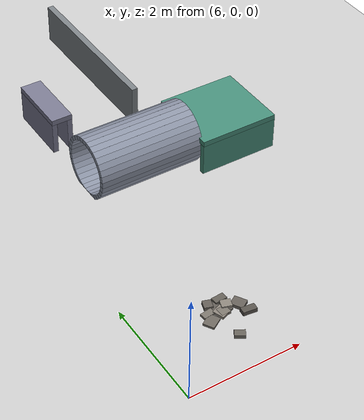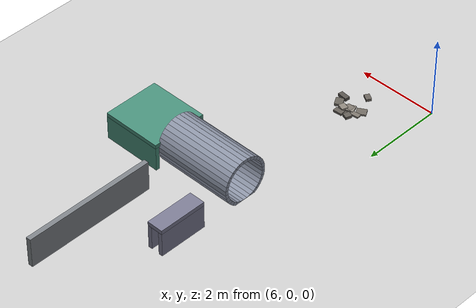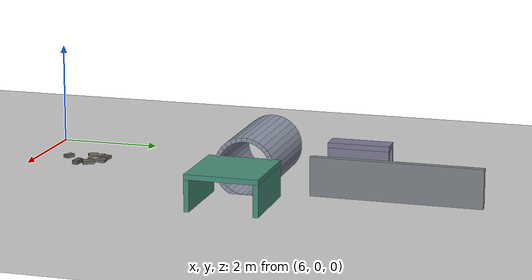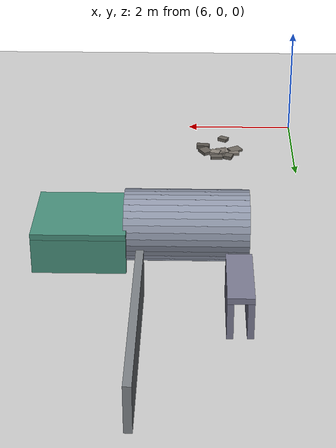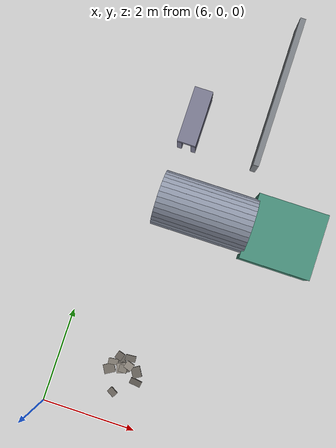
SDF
<sdf version="1.6">
 <world name="competition_arena">
  <include><uri>model://sun</uri></include>
  <include><uri>model://ground_plane</uri></include>
  <model name="rubble_patch_5">
   <static>true</static>
   <link name="structure">
    <collision name="rock_00_collision">
     <pose>7.4700806 1.400559 0.026507581 0 0 0.074344014</pose>
     <geometry><box><size>0.22339491 0.12731146 0.053015162</size></box></geometry>
     <surface><friction><ode><mu>0.9</mu><mu2>0.9</mu2></ode></friction></surface>
    </collision>
    <visual name="rock_00_visual">
     <pose>7.4700806 1.400559 0.026507581 0 0 0.074344014</pose>
     <geometry><box><size>0.22339491 0.12731146 0.053015162</size></box></geometry>
     <material>
      <ambient>0.39324581 0.37358352 0.34605631 1</ambient>
      <diffuse>0.39324581 0.37358352 0.34605631 1</diffuse>
     </material>
    </visual>
    <collision name="rock_01_collision">
     <pose>7.4901791 1.2415383 0.036608824 0 0 1.2556267</pose>
     <geometry><box><size>0.15628625 0.17697781 0.073217647</size></box></geometry>
     <surface><friction><ode><mu>0.9</mu><mu2>0.9</mu2></ode></friction></surface>
    </collision>
    <visual name="rock_01_visual">
     <pose>7.4901791 1.2415383 0.036608824 0 0 1.2556267</pose>
     <geometry><box><size>0.15628625 0.17697781 0.073217647</size></box></geometry>
     <material>
      <ambient>0.55205338 0.52445072 0.48580698 1</ambient>
      <diffuse>0.55205338 0.52445072 0.48580698 1</diffuse>
     </material>
    </visual>
    <collision name="rock_02_collision">
     <pose>7.7272118 0.96106279 0.038480929 0 0 3.0238907</pose>
     <geometry><box><size>0.24615208 0.12142814 0.076961857</size></box></geometry>
     <surface><friction><ode><mu>0.9</mu><mu2>0.9</mu2></ode></friction></surface>
    </collision>
    <visual name="rock_02_visual">
     <pose>7.7272118 0.96106279 0.038480929 0 0 3.0238907</pose>
     <geometry><box><size>0.24615208 0.12142814 0.076961857</size></box></geometry>
     <material>
      <ambient>0.34768202 0.33029792 0.30596018 1</ambient>
      <diffuse>0.34768202 0.33029792 0.30596018 1</diffuse>
     </material>
    </visual>
    <collision name="rock_03_collision">
     <pose>7.3856247 1.1474614 0.025864094 0 0 1.6066829</pose>
     <geometry><box><size>0.16077805 0.17274506 0.051728188</size></box></geometry>
     <surface><friction><ode><mu>0.9</mu><mu2>0.9</mu2></ode></friction></surface>
    </collision>
    <visual name="rock_03_visual">
     <pose>7.3856247 1.1474614 0.025864094 0 0 1.6066829</pose>
     <geometry><box><size>0.16077805 0.17274506 0.051728188</size></box></geometry>
     <material>
      <ambient>0.49485081 0.47010827 0.43546872 1</ambient>
      <diffuse>0.49485081 0.47010827 0.43546872 1</diffuse>
     </material>
    </visual>
    <collision name="rock_04_collision">
     <pose>7.1434096 1.2256555 0.021368063 0 0 1.6915968</pose>
     <geometry><box><size>0.12021987 0.21106902 0.042736125</size></box></geometry>
     <surface><friction><ode><mu>0.9</mu><mu2>0.9</mu2></ode></friction></surface>
    </collision>
    <visual name="rock_04_visual">
     <pose>7.1434096 1.2256555 0.021368063 0 0 1.6915968</pose>
     <geometry><box><size>0.12021987 0.21106902 0.042736125</size></box></geometry>
     <material>
      <ambient>0.49010847 0.46560304 0.43129545 1</ambient>
      <diffuse>0.49010847 0.46560304 0.43129545 1</diffuse>
     </material>
    </visual>
    <collision name="rock_05_collision">
     <pose>7.3260052 0.61951392 0.031765713 0 0 1.037354</pose>
     <geometry><box><size>0.1290966 0.17970852 0.063531425</size></box></geometry>
     <surface><friction><ode><mu>0.9</mu><mu2>0.9</mu2></ode></friction></surface>
    </collision>
    <visual name="rock_05_visual">
     <pose>7.3260052 0.61951392 0.031765713 0 0 1.037354</pose>
     <geometry><box><size>0.1290966 0.17970852 0.063531425</size></box></geometry>
     <material>
      <ambient>0.40741315 0.3870425 0.35852357 1</ambient>
      <diffuse>0.40741315 0.3870425 0.35852357 1</diffuse>
     </material>
    </visual>
    <collision name="rock_06_collision">
     <pose>7.2380189 1.3814252 0.032993857 0 0 1.2641781</pose>
     <geometry><box><size>0.16020701 0.14900715 0.065987713</size></box></geometry>
     <surface><friction><ode><mu>0.9</mu><mu2>0.9</mu2></ode></friction></surface>
    </collision>
    <visual name="rock_06_visual">
     <pose>7.2380189 1.3814252 0.032993857 0 0 1.2641781</pose>
     <geometry><box><size>0.16020701 0.14900715 0.065987713</size></box></geometry>
     <material>
      <ambient>0.39207734 0.37247348 0.34502806 1</ambient>
      <diffuse>0.39207734 0.37247348 0.34502806 1</diffuse>
     </material>
    </visual>
    <collision name="rock_07_collision">
     <pose>7.3545741 1.1539879 0.025511158 0 0 1.9336971</pose>
     <geometry><box><size>0.20805133 0.20833667 0.051022317</size></box></geometry>
     <surface><friction><ode><mu>0.9</mu><mu2>0.9</mu2></ode></friction></surface>
    </collision>
    <visual name="rock_07_visual">
     <pose>7.3545741 1.1539879 0.025511158 0 0 1.9336971</pose>
     <geometry><box><size>0.20805133 0.20833667 0.051022317</size></box></geometry>
     <material>
      <ambient>0.54568728 0.51840292 0.48020481 1</ambient>
      <diffuse>0.54568728 0.51840292 0.48020481 1</diffuse>
     </material>
    </visual>
    <collision name="rock_08_collision">
     <pose>7.2951768 1.3161793 0.015010148 0 0 2.0568184</pose>
     <geometry><box><size>0.17588546 0.16959817 0.030020297</size></box></geometry>
     <surface><friction><ode><mu>0.9</mu><mu2>0.9</mu2></ode></friction></surface>
    </collision>
    <visual name="rock_08_visual">
     <pose>7.2951768 1.3161793 0.015010148 0 0 2.0568184</pose>
     <geometry><box><size>0.17588546 0.16959817 0.030020297</size></box></geometry>
     <material>
      <ambient>0.38885929 0.36941633 0.34219618 1</ambient>
      <diffuse>0.38885929 0.36941633 0.34219618 1</diffuse>
     </material>
    </visual>
    <collision name="rock_09_collision">
     <pose>7.1079833 1.0652962 0.020342535 0 0 0.53310124</pose>
     <geometry><box><size>0.23715351 0.19552297 0.04068507</size></box></geometry>
     <surface><friction><ode><mu>0.9</mu><mu2>0.9</mu2></ode></friction></surface>
    </collision>
    <visual name="rock_09_visual">
     <pose>7.1079833 1.0652962 0.020342535 0 0 0.53310124</pose>
     <geometry><box><size>0.23715351 0.19552297 0.04068507</size></box></geometry>
     <material>
      <ambient>0.43356468 0.41188645 0.38153692 1</ambient>
      <diffuse>0.43356468 0.41188645 0.38153692 1</diffuse>
     </material>
    </visual>
    <collision name="rock_10_collision">
     <pose>7.6782974 1.1641024 0.030823521 0 0 2.1136499</pose>
     <geometry><box><size>0.22639505 0.19013658 0.061647043</size></box></geometry>
     <surface><friction><ode><mu>0.9</mu><mu2>0.9</mu2></ode></friction></surface>
    </collision>
    <visual name="rock_10_visual">
     <pose>7.6782974 1.1641024 0.030823521 0 0 2.1136499</pose>
     <geometry><box><size>0.22639505 0.19013658 0.061647043</size></box></geometry>
     <material>
      <ambient>0.40044518 0.38042292 0.35239176 1</ambient>
      <diffuse>0.40044518 0.38042292 0.35239176 1</diffuse>
     </material>
    </visual>
    <collision name="rock_11_collision">
     <pose>7.431861 1.1982642 0.015610635 0 0 0.22879663</pose>
     <geometry><box><size>0.18176772 0.20196852 0.031221269</size></box></geometry>
     <surface><friction><ode><mu>0.9</mu><mu2>0.9</mu2></ode></friction></surface>
    </collision>
    <visual name="rock_11_visual">
     <pose>7.431861 1.1982642 0.015610635 0 0 0.22879663</pose>
     <geometry><box><size>0.18176772 0.20196852 0.031221269</size></box></geometry>
     <material>
      <ambient>0.37876221 0.3598241 0.33331075 1</ambient>
      <diffuse>0.37876221 0.3598241 0.33331075 1</diffuse>
     </material>
    </visual>
   </link>
  </model>
  <model name="tunnel_1_reject">
   <static>true</static>
   <link name="structure">
    <collision name="side_-1_collision">
     <pose>7.05 6.6 0.3 0 0 0</pose>
     <geometry><box><size>0.1 1.2 0.6</size></box></geometry>
     <surface><friction><ode><mu>0.9</mu><mu2>0.9</mu2></ode></friction></surface>
    </collision>
    <visual name="side_-1_visual">
     <pose>7.05 6.6 0.3 0 0 0</pose>
     <geometry><box><size>0.1 1.2 0.6</size></box></geometry>
     <material><ambient>0.48 0.48 0.57 1</ambient><diffuse>0.48 0.48 0.57 1</diffuse></material>
    </visual>
    <collision name="side_1_collision">
     <pose>7.35 6.6 0.3 0 0 0</pose>
     <geometry><box><size>0.1 1.2 0.6</size></box></geometry>
     <surface><friction><ode><mu>0.9</mu><mu2>0.9</mu2></ode></friction></surface>
    </collision>
    <visual name="side_1_visual">
     <pose>7.35 6.6 0.3 0 0 0</pose>
     <geometry><box><size>0.1 1.2 0.6</size></box></geometry>
     <material><ambient>0.48 0.48 0.57 1</ambient><diffuse>0.48 0.48 0.57 1</diffuse></material>
    </visual>
    <collision name="roof_collision">
     <pose>7.2 6.6 0.65 0 0 0</pose>
     <geometry><box><size>0.4 1.2 0.1</size></box></geometry>
     <surface><friction><ode><mu>0.9</mu><mu2>0.9</mu2></ode></friction></surface>
    </collision>
    <visual name="roof_visual">
     <pose>7.2 6.6 0.65 0 0 0</pose>
     <geometry><box><size>0.4 1.2 0.1</size></box></geometry>
     <material><ambient>0.48 0.48 0.57 1</ambient><diffuse>0.48 0.48 0.57 1</diffuse></material>
    </visual>
   </link>
  </model>
  <model name="tunnel_3_culvert">
   <static>true</static>
   <link name="structure">
    <collision name="side_-1_collision">
     <pose>9.7 4.15 0.3 0 0 0</pose>
     <geometry><box><size>1.5 0.1 0.6</size></box></geometry>
     <surface><friction><ode><mu>0.9</mu><mu2>0.9</mu2></ode></friction></surface>
    </collision>
    <visual name="side_-1_visual">
     <pose>9.7 4.15 0.3 0 0 0</pose>
     <geometry><box><size>1.5 0.1 0.6</size></box></geometry>
     <material><ambient>0.28 0.56 0.48 1</ambient><diffuse>0.28 0.56 0.48 1</diffuse></material>
    </visual>
    <collision name="side_1_collision">
     <pose>9.7 5.45 0.3 0 0 0</pose>
     <geometry><box><size>1.5 0.1 0.6</size></box></geometry>
     <surface><friction><ode><mu>0.9</mu><mu2>0.9</mu2></ode></friction></surface>
    </collision>
    <visual name="side_1_visual">
     <pose>9.7 5.45 0.3 0 0 0</pose>
     <geometry><box><size>1.5 0.1 0.6</size></box></geometry>
     <material><ambient>0.28 0.56 0.48 1</ambient><diffuse>0.28 0.56 0.48 1</diffuse></material>
    </visual>
    <collision name="roof_collision">
     <pose>9.7 4.8 0.65 0 0 0</pose>
     <geometry><box><size>1.5 1.4 0.1</size></box></geometry>
     <surface><friction><ode><mu>0.9</mu><mu2>0.9</mu2></ode></friction></surface>
    </collision>
    <visual name="roof_visual">
     <pose>9.7 4.8 0.65 0 0 0</pose>
     <geometry><box><size>1.5 1.4 0.1</size></box></geometry>
     <material><ambient>0.28 0.56 0.48 1</ambient><diffuse>0.28 0.56 0.48 1</diffuse></material>
    </visual>
   </link>
  </model>
  <model name="tunnel_2_round_pipe">
   <static>true</static>
   <link name="structure">
    <collision name="shell_00_collision">
     <pose>8 5.34 0.5 -1.5707963 0 0</pose>
     <geometry><box><size>2 0.11625003 0.08</size></box></geometry>
     <surface><friction><ode><mu>0.9</mu><mu2>0.9</mu2></ode></friction></surface>
    </collision>
    <visual name="shell_00_visual">
     <pose>8 5.34 0.5 -1.5707963 0 0</pose>
     <geometry><box><size>2 0.11625003 0.08</size></box></geometry>
     <material><ambient>0.55 0.58 0.65 1</ambient><diffuse>0.55 0.58 0.65 1</diffuse></material>
    </visual>
    <collision name="shell_01_collision">
     <pose>8 5.3296241 0.60534877 -1.3744468 0 0</pose>
     <geometry><box><size>2 0.11625003 0.08</size></box></geometry>
     <surface><friction><ode><mu>0.9</mu><mu2>0.9</mu2></ode></friction></surface>
    </collision>
    <visual name="shell_01_visual">
     <pose>8 5.3296241 0.60534877 -1.3744468 0 0</pose>
     <geometry><box><size>2 0.11625003 0.08</size></box></geometry>
     <material><ambient>0.55 0.58 0.65 1</ambient><diffuse>0.55 0.58 0.65 1</diffuse></material>
    </visual>
    <collision name="shell_02_collision">
     <pose>8 5.2988949 0.70664905 -1.1780972 0 0</pose>
     <geometry><box><size>2 0.11625003 0.08</size></box></geometry>
     <surface><friction><ode><mu>0.9</mu><mu2>0.9</mu2></ode></friction></surface>
    </collision>
    <visual name="shell_02_visual">
     <pose>8 5.2988949 0.70664905 -1.1780972 0 0</pose>
     <geometry><box><size>2 0.11625003 0.08</size></box></geometry>
     <material><ambient>0.55 0.58 0.65 1</ambient><diffuse>0.55 0.58 0.65 1</diffuse></material>
    </visual>
    <collision name="shell_03_collision">
     <pose>8 5.2489936 0.80000793 -0.9817477 0 0</pose>
     <geometry><box><size>2 0.11625003 0.08</size></box></geometry>
     <surface><friction><ode><mu>0.9</mu><mu2>0.9</mu2></ode></friction></surface>
    </collision>
    <visual name="shell_03_visual">
     <pose>8 5.2489936 0.80000793 -0.9817477 0 0</pose>
     <geometry><box><size>2 0.11625003 0.08</size></box></geometry>
     <material><ambient>0.55 0.58 0.65 1</ambient><diffuse>0.55 0.58 0.65 1</diffuse></material>
    </visual>
    <collision name="shell_04_collision">
     <pose>8 5.1818377 0.88183766 -0.78539816 0 0</pose>
     <geometry><box><size>2 0.11625003 0.08</size></box></geometry>
     <surface><friction><ode><mu>0.9</mu><mu2>0.9</mu2></ode></friction></surface>
    </collision>
    <visual name="shell_04_visual">
     <pose>8 5.1818377 0.88183766 -0.78539816 0 0</pose>
     <geometry><box><size>2 0.11625003 0.08</size></box></geometry>
     <material><ambient>0.55 0.58 0.65 1</ambient><diffuse>0.55 0.58 0.65 1</diffuse></material>
    </visual>
    <collision name="shell_05_collision">
     <pose>8 5.1000079 0.94899359 -0.58904862 0 0</pose>
     <geometry><box><size>2 0.11625003 0.08</size></box></geometry>
     <surface><friction><ode><mu>0.9</mu><mu2>0.9</mu2></ode></friction></surface>
    </collision>
    <visual name="shell_05_visual">
     <pose>8 5.1000079 0.94899359 -0.58904862 0 0</pose>
     <geometry><box><size>2 0.11625003 0.08</size></box></geometry>
     <material><ambient>0.55 0.58 0.65 1</ambient><diffuse>0.55 0.58 0.65 1</diffuse></material>
    </visual>
    <collision name="shell_06_collision">
     <pose>8 5.0066491 0.99889495 -0.39269908 0 0</pose>
     <geometry><box><size>2 0.11625003 0.08</size></box></geometry>
     <surface><friction><ode><mu>0.9</mu><mu2>0.9</mu2></ode></friction></surface>
    </collision>
    <visual name="shell_06_visual">
     <pose>8 5.0066491 0.99889495 -0.39269908 0 0</pose>
     <geometry><box><size>2 0.11625003 0.08</size></box></geometry>
     <material><ambient>0.55 0.58 0.65 1</ambient><diffuse>0.55 0.58 0.65 1</diffuse></material>
    </visual>
    <collision name="shell_07_collision">
     <pose>8 4.9053488 1.0296241 -0.19634954 0 0</pose>
     <geometry><box><size>2 0.11625003 0.08</size></box></geometry>
     <surface><friction><ode><mu>0.9</mu><mu2>0.9</mu2></ode></friction></surface>
    </collision>
    <visual name="shell_07_visual">
     <pose>8 4.9053488 1.0296241 -0.19634954 0 0</pose>
     <geometry><box><size>2 0.11625003 0.08</size></box></geometry>
     <material><ambient>0.55 0.58 0.65 1</ambient><diffuse>0.55 0.58 0.65 1</diffuse></material>
    </visual>
    <collision name="shell_08_collision">
     <pose>8 4.8 1.04 0 0 0</pose>
     <geometry><box><size>2 0.11625003 0.08</size></box></geometry>
     <surface><friction><ode><mu>0.9</mu><mu2>0.9</mu2></ode></friction></surface>
    </collision>
    <visual name="shell_08_visual">
     <pose>8 4.8 1.04 0 0 0</pose>
     <geometry><box><size>2 0.11625003 0.08</size></box></geometry>
     <material><ambient>0.55 0.58 0.65 1</ambient><diffuse>0.55 0.58 0.65 1</diffuse></material>
    </visual>
    <collision name="shell_09_collision">
     <pose>8 4.6946512 1.0296241 0.19634954 0 0</pose>
     <geometry><box><size>2 0.11625003 0.08</size></box></geometry>
     <surface><friction><ode><mu>0.9</mu><mu2>0.9</mu2></ode></friction></surface>
    </collision>
    <visual name="shell_09_visual">
     <pose>8 4.6946512 1.0296241 0.19634954 0 0</pose>
     <geometry><box><size>2 0.11625003 0.08</size></box></geometry>
     <material><ambient>0.55 0.58 0.65 1</ambient><diffuse>0.55 0.58 0.65 1</diffuse></material>
    </visual>
    <collision name="shell_10_collision">
     <pose>8 4.5933509 0.99889495 0.39269908 0 0</pose>
     <geometry><box><size>2 0.11625003 0.08</size></box></geometry>
     <surface><friction><ode><mu>0.9</mu><mu2>0.9</mu2></ode></friction></surface>
    </collision>
    <visual name="shell_10_visual">
     <pose>8 4.5933509 0.99889495 0.39269908 0 0</pose>
     <geometry><box><size>2 0.11625003 0.08</size></box></geometry>
     <material><ambient>0.55 0.58 0.65 1</ambient><diffuse>0.55 0.58 0.65 1</diffuse></material>
    </visual>
    <collision name="shell_11_collision">
     <pose>8 4.4999921 0.94899359 0.58904862 0 0</pose>
     <geometry><box><size>2 0.11625003 0.08</size></box></geometry>
     <surface><friction><ode><mu>0.9</mu><mu2>0.9</mu2></ode></friction></surface>
    </collision>
    <visual name="shell_11_visual">
     <pose>8 4.4999921 0.94899359 0.58904862 0 0</pose>
     <geometry><box><size>2 0.11625003 0.08</size></box></geometry>
     <material><ambient>0.55 0.58 0.65 1</ambient><diffuse>0.55 0.58 0.65 1</diffuse></material>
    </visual>
    <collision name="shell_12_collision">
     <pose>8 4.4181623 0.88183766 0.78539816 0 0</pose>
     <geometry><box><size>2 0.11625003 0.08</size></box></geometry>
     <surface><friction><ode><mu>0.9</mu><mu2>0.9</mu2></ode></friction></surface>
    </collision>
    <visual name="shell_12_visual">
     <pose>8 4.4181623 0.88183766 0.78539816 0 0</pose>
     <geometry><box><size>2 0.11625003 0.08</size></box></geometry>
     <material><ambient>0.55 0.58 0.65 1</ambient><diffuse>0.55 0.58 0.65 1</diffuse></material>
    </visual>
    <collision name="shell_13_collision">
     <pose>8 4.3510064 0.80000793 0.9817477 0 0</pose>
     <geometry><box><size>2 0.11625003 0.08</size></box></geometry>
     <surface><friction><ode><mu>0.9</mu><mu2>0.9</mu2></ode></friction></surface>
    </collision>
    <visual name="shell_13_visual">
     <pose>8 4.3510064 0.80000793 0.9817477 0 0</pose>
     <geometry><box><size>2 0.11625003 0.08</size></box></geometry>
     <material><ambient>0.55 0.58 0.65 1</ambient><diffuse>0.55 0.58 0.65 1</diffuse></material>
    </visual>
    <collision name="shell_14_collision">
     <pose>8 4.3011051 0.70664905 1.1780972 0 0</pose>
     <geometry><box><size>2 0.11625003 0.08</size></box></geometry>
     <surface><friction><ode><mu>0.9</mu><mu2>0.9</mu2></ode></friction></surface>
    </collision>
    <visual name="shell_14_visual">
     <pose>8 4.3011051 0.70664905 1.1780972 0 0</pose>
     <geometry><box><size>2 0.11625003 0.08</size></box></geometry>
     <material><ambient>0.55 0.58 0.65 1</ambient><diffuse>0.55 0.58 0.65 1</diffuse></material>
    </visual>
    <collision name="shell_15_collision">
     <pose>8 4.2703759 0.60534877 1.3744468 0 0</pose>
     <geometry><box><size>2 0.11625003 0.08</size></box></geometry>
     <surface><friction><ode><mu>0.9</mu><mu2>0.9</mu2></ode></friction></surface>
    </collision>
    <visual name="shell_15_visual">
     <pose>8 4.2703759 0.60534877 1.3744468 0 0</pose>
     <geometry><box><size>2 0.11625003 0.08</size></box></geometry>
     <material><ambient>0.55 0.58 0.65 1</ambient><diffuse>0.55 0.58 0.65 1</diffuse></material>
    </visual>
    <collision name="shell_16_collision">
     <pose>8 4.26 0.5 1.5707963 0 0</pose>
     <geometry><box><size>2 0.11625003 0.08</size></box></geometry>
     <surface><friction><ode><mu>0.9</mu><mu2>0.9</mu2></ode></friction></surface>
    </collision>
    <visual name="shell_16_visual">
     <pose>8 4.26 0.5 1.5707963 0 0</pose>
     <geometry><box><size>2 0.11625003 0.08</size></box></geometry>
     <material><ambient>0.55 0.58 0.65 1</ambient><diffuse>0.55 0.58 0.65 1</diffuse></material>
    </visual>
    <collision name="shell_17_collision">
     <pose>8 4.2703759 0.39465123 1.7671459 0 0</pose>
     <geometry><box><size>2 0.11625003 0.08</size></box></geometry>
     <surface><friction><ode><mu>0.9</mu><mu2>0.9</mu2></ode></friction></surface>
    </collision>
    <visual name="shell_17_visual">
     <pose>8 4.2703759 0.39465123 1.7671459 0 0</pose>
     <geometry><box><size>2 0.11625003 0.08</size></box></geometry>
     <material><ambient>0.55 0.58 0.65 1</ambient><diffuse>0.55 0.58 0.65 1</diffuse></material>
    </visual>
    <collision name="shell_18_collision">
     <pose>8 4.3011051 0.29335095 1.9634954 0 0</pose>
     <geometry><box><size>2 0.11625003 0.08</size></box></geometry>
     <surface><friction><ode><mu>0.9</mu><mu2>0.9</mu2></ode></friction></surface>
    </collision>
    <visual name="shell_18_visual">
     <pose>8 4.3011051 0.29335095 1.9634954 0 0</pose>
     <geometry><box><size>2 0.11625003 0.08</size></box></geometry>
     <material><ambient>0.55 0.58 0.65 1</ambient><diffuse>0.55 0.58 0.65 1</diffuse></material>
    </visual>
    <collision name="shell_19_collision">
     <pose>8 4.3510064 0.19999207 2.1598449 0 0</pose>
     <geometry><box><size>2 0.11625003 0.08</size></box></geometry>
     <surface><friction><ode><mu>0.9</mu><mu2>0.9</mu2></ode></friction></surface>
    </collision>
    <visual name="shell_19_visual">
     <pose>8 4.3510064 0.19999207 2.1598449 0 0</pose>
     <geometry><box><size>2 0.11625003 0.08</size></box></geometry>
     <material><ambient>0.55 0.58 0.65 1</ambient><diffuse>0.55 0.58 0.65 1</diffuse></material>
    </visual>
    <collision name="shell_20_collision">
     <pose>8 4.4181623 0.11816234 2.3561945 0 0</pose>
     <geometry><box><size>2 0.11625003 0.08</size></box></geometry>
     <surface><friction><ode><mu>0.9</mu><mu2>0.9</mu2></ode></friction></surface>
    </collision>
    <visual name="shell_20_visual">
     <pose>8 4.4181623 0.11816234 2.3561945 0 0</pose>
     <geometry><box><size>2 0.11625003 0.08</size></box></geometry>
     <material><ambient>0.55 0.58 0.65 1</ambient><diffuse>0.55 0.58 0.65 1</diffuse></material>
    </visual>
    <collision name="shell_21_collision">
     <pose>8 4.4999921 0.051006409 2.552544 0 0</pose>
     <geometry><box><size>2 0.11625003 0.08</size></box></geometry>
     <surface><friction><ode><mu>0.9</mu><mu2>0.9</mu2></ode></friction></surface>
    </collision>
    <visual name="shell_21_visual">
     <pose>8 4.4999921 0.051006409 2.552544 0 0</pose>
     <geometry><box><size>2 0.11625003 0.08</size></box></geometry>
     <material><ambient>0.55 0.58 0.65 1</ambient><diffuse>0.55 0.58 0.65 1</diffuse></material>
    </visual>
    <collision name="shell_22_collision">
     <pose>8 4.5933509 0.0011050524 2.7488936 0 0</pose>
     <geometry><box><size>2 0.11625003 0.08</size></box></geometry>
     <surface><friction><ode><mu>0.9</mu><mu2>0.9</mu2></ode></friction></surface>
    </collision>
    <visual name="shell_22_visual">
     <pose>8 4.5933509 0.0011050524 2.7488936 0 0</pose>
     <geometry><box><size>2 0.11625003 0.08</size></box></geometry>
     <material><ambient>0.55 0.58 0.65 1</ambient><diffuse>0.55 0.58 0.65 1</diffuse></material>
    </visual>
    <collision name="shell_23_collision">
     <pose>8 4.6946512 -0.029624051 2.9452431 0 0</pose>
     <geometry><box><size>2 0.11625003 0.08</size></box></geometry>
     <surface><friction><ode><mu>0.9</mu><mu2>0.9</mu2></ode></friction></surface>
    </collision>
    <visual name="shell_23_visual">
     <pose>8 4.6946512 -0.029624051 2.9452431 0 0</pose>
     <geometry><box><size>2 0.11625003 0.08</size></box></geometry>
     <material><ambient>0.55 0.58 0.65 1</ambient><diffuse>0.55 0.58 0.65 1</diffuse></material>
    </visual>
    <collision name="shell_24_collision">
     <pose>8 4.8 -0.04 3.1415927 0 0</pose>
     <geometry><box><size>2 0.11625003 0.08</size></box></geometry>
     <surface><friction><ode><mu>0.9</mu><mu2>0.9</mu2></ode></friction></surface>
    </collision>
    <visual name="shell_24_visual">
     <pose>8 4.8 -0.04 3.1415927 0 0</pose>
     <geometry><box><size>2 0.11625003 0.08</size></box></geometry>
     <material><ambient>0.55 0.58 0.65 1</ambient><diffuse>0.55 0.58 0.65 1</diffuse></material>
    </visual>
    <collision name="shell_25_collision">
     <pose>8 4.9053488 -0.029624051 3.3379422 0 0</pose>
     <geometry><box><size>2 0.11625003 0.08</size></box></geometry>
     <surface><friction><ode><mu>0.9</mu><mu2>0.9</mu2></ode></friction></surface>
    </collision>
    <visual name="shell_25_visual">
     <pose>8 4.9053488 -0.029624051 3.3379422 0 0</pose>
     <geometry><box><size>2 0.11625003 0.08</size></box></geometry>
     <material><ambient>0.55 0.58 0.65 1</ambient><diffuse>0.55 0.58 0.65 1</diffuse></material>
    </visual>
    <collision name="shell_26_collision">
     <pose>8 5.0066491 0.0011050524 3.5342917 0 0</pose>
     <geometry><box><size>2 0.11625003 0.08</size></box></geometry>
     <surface><friction><ode><mu>0.9</mu><mu2>0.9</mu2></ode></friction></surface>
    </collision>
    <visual name="shell_26_visual">
     <pose>8 5.0066491 0.0011050524 3.5342917 0 0</pose>
     <geometry><box><size>2 0.11625003 0.08</size></box></geometry>
     <material><ambient>0.55 0.58 0.65 1</ambient><diffuse>0.55 0.58 0.65 1</diffuse></material>
    </visual>
    <collision name="shell_27_collision">
     <pose>8 5.1000079 0.051006409 3.7306413 0 0</pose>
     <geometry><box><size>2 0.11625003 0.08</size></box></geometry>
     <surface><friction><ode><mu>0.9</mu><mu2>0.9</mu2></ode></friction></surface>
    </collision>
    <visual name="shell_27_visual">
     <pose>8 5.1000079 0.051006409 3.7306413 0 0</pose>
     <geometry><box><size>2 0.11625003 0.08</size></box></geometry>
     <material><ambient>0.55 0.58 0.65 1</ambient><diffuse>0.55 0.58 0.65 1</diffuse></material>
    </visual>
    <collision name="shell_28_collision">
     <pose>8 5.1818377 0.11816234 3.9269908 0 0</pose>
     <geometry><box><size>2 0.11625003 0.08</size></box></geometry>
     <surface><friction><ode><mu>0.9</mu><mu2>0.9</mu2></ode></friction></surface>
    </collision>
    <visual name="shell_28_visual">
     <pose>8 5.1818377 0.11816234 3.9269908 0 0</pose>
     <geometry><box><size>2 0.11625003 0.08</size></box></geometry>
     <material><ambient>0.55 0.58 0.65 1</ambient><diffuse>0.55 0.58 0.65 1</diffuse></material>
    </visual>
    <collision name="shell_29_collision">
     <pose>8 5.2489936 0.19999207 4.1233404 0 0</pose>
     <geometry><box><size>2 0.11625003 0.08</size></box></geometry>
     <surface><friction><ode><mu>0.9</mu><mu2>0.9</mu2></ode></friction></surface>
    </collision>
    <visual name="shell_29_visual">
     <pose>8 5.2489936 0.19999207 4.1233404 0 0</pose>
     <geometry><box><size>2 0.11625003 0.08</size></box></geometry>
     <material><ambient>0.55 0.58 0.65 1</ambient><diffuse>0.55 0.58 0.65 1</diffuse></material>
    </visual>
    <collision name="shell_30_collision">
     <pose>8 5.2988949 0.29335095 4.3196899 0 0</pose>
     <geometry><box><size>2 0.11625003 0.08</size></box></geometry>
     <surface><friction><ode><mu>0.9</mu><mu2>0.9</mu2></ode></friction></surface>
    </collision>
    <visual name="shell_30_visual">
     <pose>8 5.2988949 0.29335095 4.3196899 0 0</pose>
     <geometry><box><size>2 0.11625003 0.08</size></box></geometry>
     <material><ambient>0.55 0.58 0.65 1</ambient><diffuse>0.55 0.58 0.65 1</diffuse></material>
    </visual>
    <collision name="shell_31_collision">
     <pose>8 5.3296241 0.39465123 4.5160394 0 0</pose>
     <geometry><box><size>2 0.11625003 0.08</size></box></geometry>
     <surface><friction><ode><mu>0.9</mu><mu2>0.9</mu2></ode></friction></surface>
    </collision>
    <visual name="shell_31_visual">
     <pose>8 5.3296241 0.39465123 4.5160394 0 0</pose>
     <geometry><box><size>2 0.11625003 0.08</size></box></geometry>
     <material><ambient>0.55 0.58 0.65 1</ambient><diffuse>0.55 0.58 0.65 1</diffuse></material>
    </visual>
   </link>
  </model>
  <model name="finish_lane_partition">
   <static>true</static>
   <link name="structure">
    <collision name="partition_collision">
     <pose>8.7 7.625 0.375 0 0 1.5707963</pose>
     <geometry><box><size>3.25 0.12 0.75</size></box></geometry>
     <surface><friction><ode><mu>0.9</mu><mu2>0.9</mu2></ode></friction></surface>
    </collision>
    <visual name="partition_visual">
     <pose>8.7 7.625 0.375 0 0 1.5707963</pose>
     <geometry><box><size>3.25 0.12 0.75</size></box></geometry>
     <material><ambient>0.49 0.51 0.53 1</ambient><diffuse>0.49 0.51 0.53 1</diffuse></material>
    </visual>
   </link>
  </model>
 </world>
</sdf>
